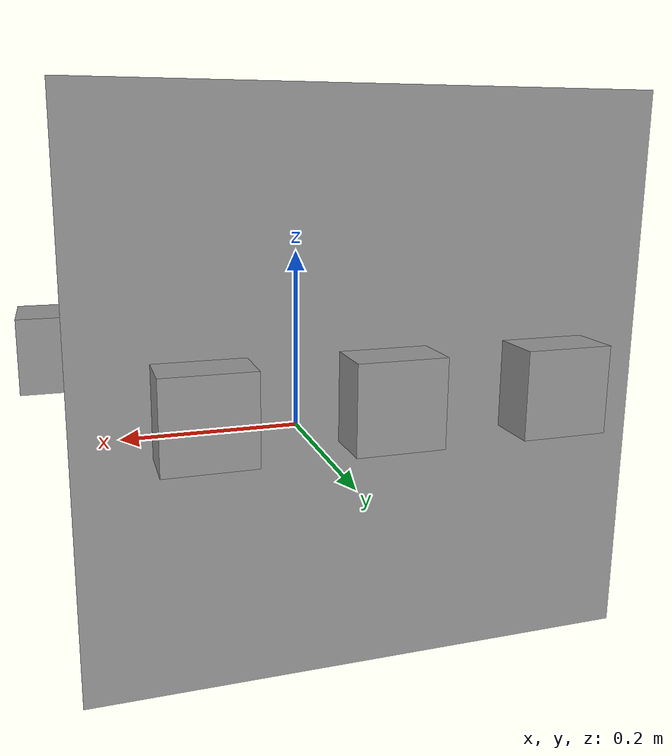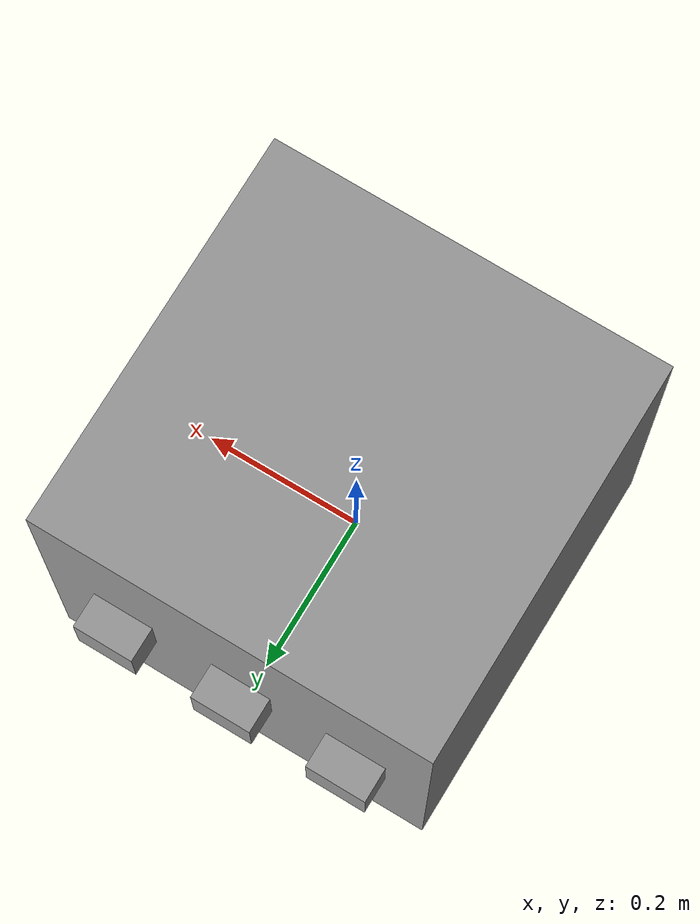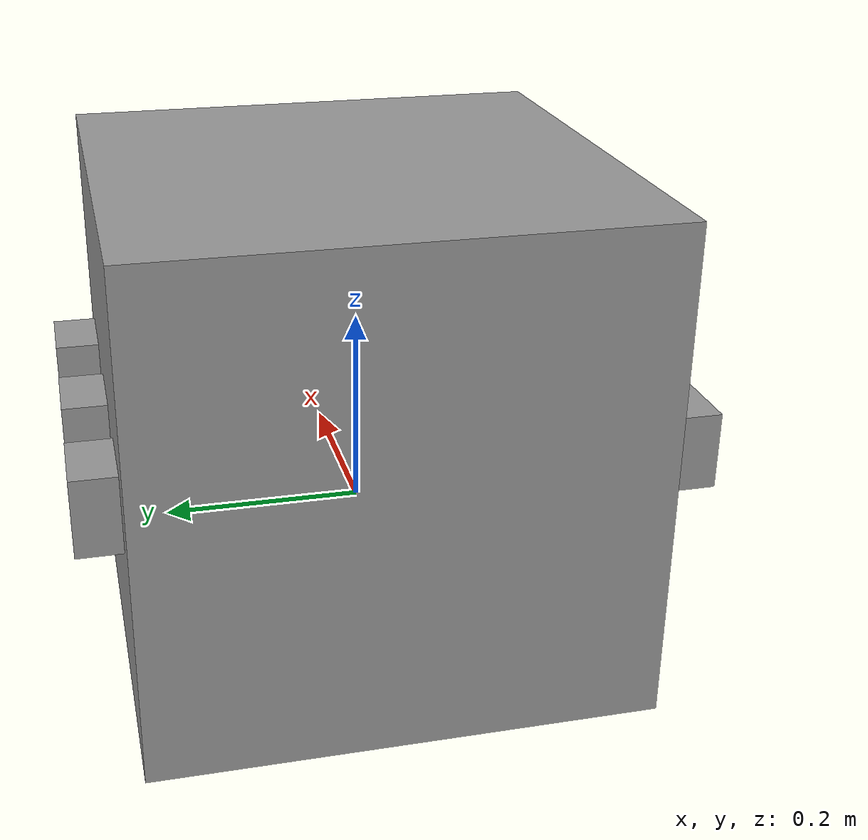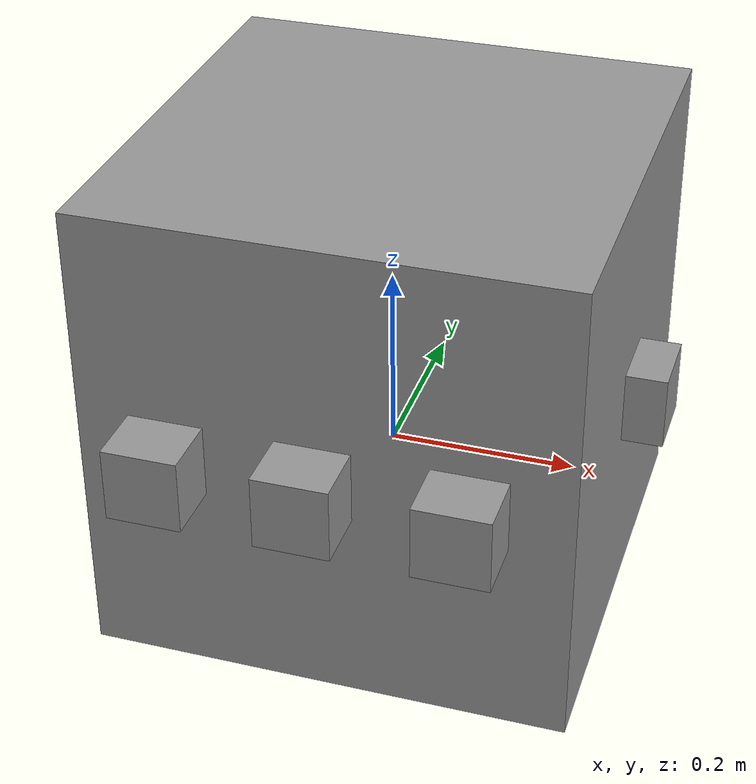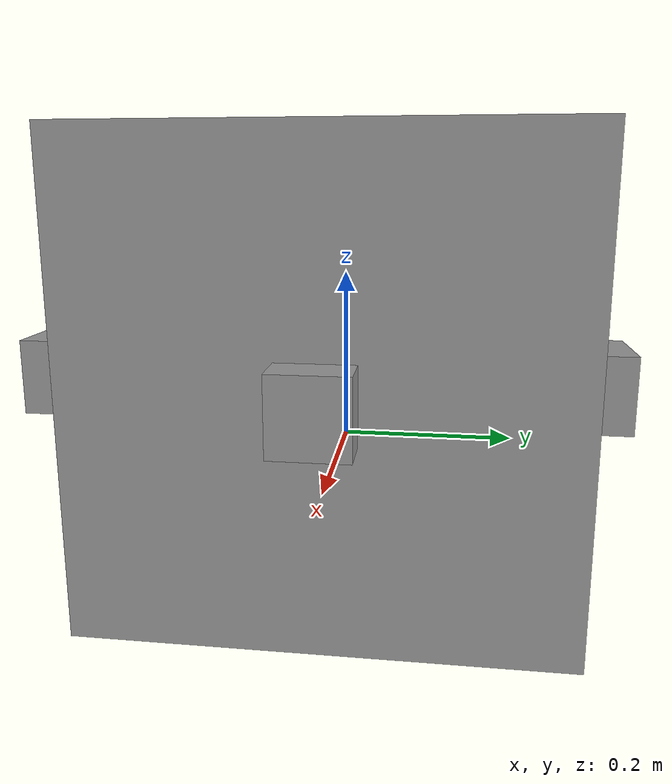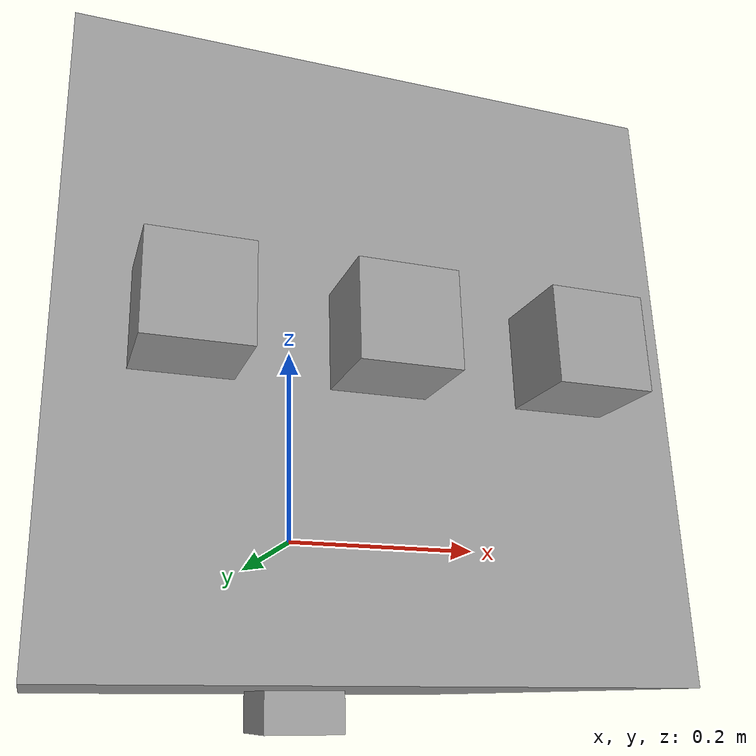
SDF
<?xml version='1.0'?>
<sdf version='1.6'>
  <model name='tiburon_bot_final'>
    <link name='main_cube_body'>
      <pose frame=''>0.004745 0.002289 0.10857 0 -0 0</pose>
      <inertial>
        <mass>23</mass>
        <inertia>
          <ixx>0.166667</ixx>
          <ixy>0</ixy>
          <ixz>0</ixz>
          <iyy>0.166667</iyy>
          <iyz>0</iyz>
          <izz>0.166667</izz>
        </inertia>
        <pose frame=''>0 0 0 0 -0 0</pose>
      </inertial>
      <self_collide>0</self_collide>
      <kinematic>0</kinematic>
      <visual name='visual'>
        <pose frame=''>0 0 0 0 -0 0</pose>
        <geometry>
          <box>
            <size>0.5 0.5 0.5</size>
          </box>
        </geometry>
        <material>
          <lighting>1</lighting>
          <script>
            <uri>file://media/materials/scripts/gazebo.material</uri>
            <name>Gazebo/Grey</name>
          </script>
          <shader type='pixel'>
            <normal_map>__default__</normal_map>
          </shader>
          <ambient>0.3 0.3 0.3 1</ambient>
          <diffuse>0.7 0.7 0.7 1</diffuse>
          <specular>0.01 0.01 0.01 1</specular>
          <emissive>0 0 0 1</emissive>
        </material>
        <transparency>0</transparency>
        <cast_shadows>1</cast_shadows>
      </visual>
      <collision name='collision'>
        <laser_retro>0</laser_retro>
        <max_contacts>10</max_contacts>
        <pose frame=''>0 0 0 0 -0 0</pose>
        <geometry>
          <box>
            <size>0.5 0.5 0.5</size>
          </box>
        </geometry>
        <surface>
          <friction>
            <ode>
              <mu>1</mu>
              <mu2>1</mu2>
              <fdir1>0 0 0</fdir1>
              <slip1>0</slip1>
              <slip2>0</slip2>
            </ode>
            <torsional>
              <coefficient>1</coefficient>
              <patch_radius>0</patch_radius>
              <surface_radius>0</surface_radius>
              <use_patch_radius>1</use_patch_radius>
              <ode>
                <slip>0</slip>
              </ode>
            </torsional>
          </friction>
          <bounce>
            <restitution_coefficient>0</restitution_coefficient>
            <threshold>1e+06</threshold>
          </bounce>
          <contact>
            <collide_without_contact>0</collide_without_contact>
            <collide_without_contact_bitmask>1</collide_without_contact_bitmask>
            <collide_bitmask>1</collide_bitmask>
            <ode>
              <soft_cfm>0</soft_cfm>
              <soft_erp>0.2</soft_erp>
              <kp>1e+13</kp>
              <kd>1</kd>
              <max_vel>0.01</max_vel>
              <min_depth>0</min_depth>
            </ode>
            <bullet>
              <split_impulse>1</split_impulse>
              <split_impulse_penetration_threshold>-0.01</split_impulse_penetration_threshold>
              <soft_cfm>0</soft_cfm>
              <soft_erp>0.2</soft_erp>
              <kp>1e+13</kp>
              <kd>1</kd>
            </bullet>
          </contact>
        </surface>
      </collision>
    </link>
    <link name='thruster_1'>
      <pose frame=''>-0.151996 0.257619 0.10857 0 -0 0</pose>
      <inertial>
        <mass>0.39</mass>
        <inertia>
          <ixx>0.166667</ixx>
          <ixy>0</ixy>
          <ixz>0</ixz>
          <iyy>0.166667</iyy>
          <iyz>0</iyz>
          <izz>0.166667</izz>
        </inertia>
        <pose frame=''>0 0 0 0 -0 0</pose>
      </inertial>
      <self_collide>0</self_collide>
      <kinematic>0</kinematic>
      <visual name='visual'>
        <pose frame=''>0 0 0 0 -0 0</pose>
        <geometry>
          <box>
            <size>0.077 0.077 0.077</size>
          </box>
        </geometry>
        <material>
          <lighting>1</lighting>
          <script>
            <uri>file://media/materials/scripts/gazebo.material</uri>
            <name>Gazebo/Grey</name>
          </script>
          <shader type='pixel'>
            <normal_map>__default__</normal_map>
          </shader>
          <ambient>1 1 1 1</ambient>
          <diffuse>1 1 1 1</diffuse>
          <specular>1 1 1 1</specular>
          <emissive>1 1 1 1</emissive>
        </material>
        <transparency>0</transparency>
        <cast_shadows>1</cast_shadows>
      </visual>
      <collision name='collision'>
        <laser_retro>0</laser_retro>
        <max_contacts>10</max_contacts>
        <pose frame=''>0 0 0 0 -0 0</pose>
        <geometry>
          <box>
            <size>0.077 0.077 0.077</size>
          </box>
        </geometry>
        <surface>
          <friction>
            <ode>
              <mu>1</mu>
              <mu2>1</mu2>
              <fdir1>0 0 0</fdir1>
              <slip1>0</slip1>
              <slip2>0</slip2>
            </ode>
            <torsional>
              <coefficient>1</coefficient>
              <patch_radius>0</patch_radius>
              <surface_radius>0</surface_radius>
              <use_patch_radius>1</use_patch_radius>
              <ode>
                <slip>0</slip>
              </ode>
            </torsional>
          </friction>
          <bounce>
            <restitution_coefficient>0</restitution_coefficient>
            <threshold>1e+06</threshold>
          </bounce>
          <contact>
            <collide_without_contact>0</collide_without_contact>
            <collide_without_contact_bitmask>1</collide_without_contact_bitmask>
            <collide_bitmask>1</collide_bitmask>
            <ode>
              <soft_cfm>0</soft_cfm>
              <soft_erp>0.2</soft_erp>
              <kp>1e+13</kp>
              <kd>1</kd>
              <max_vel>0.01</max_vel>
              <min_depth>0</min_depth>
            </ode>
            <bullet>
              <split_impulse>1</split_impulse>
              <split_impulse_penetration_threshold>-0.01</split_impulse_penetration_threshold>
              <soft_cfm>0</soft_cfm>
              <soft_erp>0.2</soft_erp>
              <kp>1e+13</kp>
              <kd>1</kd>
            </bullet>
          </contact>
        </surface>
      </collision>
    </link>
    <link name='thruster_2'>
      <pose frame=''>-0.151996 -0.27381 0.10857 0 -0 0</pose>
      <inertial>
        <mass>0.39</mass>
        <inertia>
          <ixx>0.166667</ixx>
          <ixy>0</ixy>
          <ixz>0</ixz>
          <iyy>0.166667</iyy>
          <iyz>0</iyz>
          <izz>0.166667</izz>
        </inertia>
        <pose frame=''>0 0 0 0 -0 0</pose>
      </inertial>
      <self_collide>0</self_collide>
      <kinematic>0</kinematic>
      <visual name='visual'>
        <pose frame=''>0 0 0 0 -0 0</pose>
        <geometry>
          <box>
            <size>0.077 0.077 0.077</size>
          </box>
        </geometry>
        <material>
          <lighting>1</lighting>
          <script>
            <uri>file://media/materials/scripts/gazebo.material</uri>
            <name>Gazebo/Grey</name>
          </script>
          <shader type='pixel'>
            <normal_map>__default__</normal_map>
          </shader>
          <ambient>1 1 1 1</ambient>
          <diffuse>1 1 1 1</diffuse>
          <specular>1 1 1 1</specular>
          <emissive>1 1 1 1</emissive>
        </material>
        <transparency>0</transparency>
        <cast_shadows>1</cast_shadows>
      </visual>
      <collision name='collision'>
        <laser_retro>0</laser_retro>
        <max_contacts>10</max_contacts>
        <pose frame=''>0 0 0 0 -0 0</pose>
        <geometry>
          <box>
            <size>0.077 0.077 0.077</size>
          </box>
        </geometry>
        <surface>
          <friction>
            <ode>
              <mu>1</mu>
              <mu2>1</mu2>
              <fdir1>0 0 0</fdir1>
              <slip1>0</slip1>
              <slip2>0</slip2>
            </ode>
            <torsional>
              <coefficient>1</coefficient>
              <patch_radius>0</patch_radius>
              <surface_radius>0</surface_radius>
              <use_patch_radius>1</use_patch_radius>
              <ode>
                <slip>0</slip>
              </ode>
            </torsional>
          </friction>
          <bounce>
            <restitution_coefficient>0</restitution_coefficient>
            <threshold>1e+06</threshold>
          </bounce>
          <contact>
            <collide_without_contact>0</collide_without_contact>
            <collide_without_contact_bitmask>1</collide_without_contact_bitmask>
            <collide_bitmask>1</collide_bitmask>
            <ode>
              <soft_cfm>0</soft_cfm>
              <soft_erp>0.2</soft_erp>
              <kp>1e+13</kp>
              <kd>1</kd>
              <max_vel>0.01</max_vel>
              <min_depth>0</min_depth>
            </ode>
            <bullet>
              <split_impulse>1</split_impulse>
              <split_impulse_penetration_threshold>-0.01</split_impulse_penetration_threshold>
              <soft_cfm>0</soft_cfm>
              <soft_erp>0.2</soft_erp>
              <kp>1e+13</kp>
              <kd>1</kd>
            </bullet>
          </contact>
        </surface>
      </collision>
    </link>
    <link name='thruster_3'>
      <pose frame=''>0.259 0.002289 0.10857 0 -0 0</pose>
      <inertial>
        <mass>0.39</mass>
        <inertia>
          <ixx>0.166667</ixx>
          <ixy>0</ixy>
          <ixz>0</ixz>
          <iyy>0.166667</iyy>
          <iyz>0</iyz>
          <izz>0.166667</izz>
        </inertia>
        <pose frame=''>0 0 0 0 -0 0</pose>
      </inertial>
      <self_collide>0</self_collide>
      <kinematic>0</kinematic>
      <visual name='visual'>
        <pose frame=''>0 0 0 0 -0 0</pose>
        <geometry>
          <box>
            <size>0.077 0.077 0.077</size>
          </box>
        </geometry>
        <material>
          <lighting>1</lighting>
          <script>
            <uri>file://media/materials/scripts/gazebo.material</uri>
            <name>Gazebo/Grey</name>
          </script>
          <shader type='pixel'>
            <normal_map>__default__</normal_map>
          </shader>
          <ambient>1 1 1 1</ambient>
          <diffuse>1 1 1 1</diffuse>
          <specular>1 1 1 1</specular>
          <emissive>1 1 1 1</emissive>
        </material>
        <transparency>0</transparency>
        <cast_shadows>1</cast_shadows>
      </visual>
      <collision name='collision'>
        <laser_retro>0</laser_retro>
        <max_contacts>10</max_contacts>
        <pose frame=''>0 0 0 0 -0 0</pose>
        <geometry>
          <box>
            <size>0.077 0.077 0.077</size>
          </box>
        </geometry>
        <surface>
          <friction>
            <ode>
              <mu>1</mu>
              <mu2>1</mu2>
              <fdir1>0 0 0</fdir1>
              <slip1>0</slip1>
              <slip2>0</slip2>
            </ode>
            <torsional>
              <coefficient>1</coefficient>
              <patch_radius>0</patch_radius>
              <surface_radius>0</surface_radius>
              <use_patch_radius>1</use_patch_radius>
              <ode>
                <slip>0</slip>
              </ode>
            </torsional>
          </friction>
          <bounce>
            <restitution_coefficient>0</restitution_coefficient>
            <threshold>1e+06</threshold>
          </bounce>
          <contact>
            <collide_without_contact>0</collide_without_contact>
            <collide_without_contact_bitmask>1</collide_without_contact_bitmask>
            <collide_bitmask>1</collide_bitmask>
            <ode>
              <soft_cfm>0</soft_cfm>
              <soft_erp>0.2</soft_erp>
              <kp>1e+13</kp>
              <kd>1</kd>
              <max_vel>0.01</max_vel>
              <min_depth>0</min_depth>
            </ode>
            <bullet>
              <split_impulse>1</split_impulse>
              <split_impulse_penetration_threshold>-0.01</split_impulse_penetration_threshold>
              <soft_cfm>0</soft_cfm>
              <soft_erp>0.2</soft_erp>
              <kp>1e+13</kp>
              <kd>1</kd>
            </bullet>
          </contact>
        </surface>
      </collision>
    </link>
    <link name='thruster_4'>
      <pose frame=''>0.152004 0.257619 0.10857 0 -0 0</pose>
      <inertial>
        <mass>0.39</mass>
        <inertia>
          <ixx>0.166667</ixx>
          <ixy>0</ixy>
          <ixz>0</ixz>
          <iyy>0.166667</iyy>
          <iyz>0</iyz>
          <izz>0.166667</izz>
        </inertia>
        <pose frame=''>0 0 0 0 -0 0</pose>
      </inertial>
      <self_collide>0</self_collide>
      <kinematic>0</kinematic>
      <visual name='visual'>
        <pose frame=''>0 0 0 0 -0 0</pose>
        <geometry>
          <box>
            <size>0.077 0.077 0.077</size>
          </box>
        </geometry>
        <material>
          <lighting>1</lighting>
          <script>
            <uri>file://media/materials/scripts/gazebo.material</uri>
            <name>Gazebo/Grey</name>
          </script>
          <shader type='pixel'>
            <normal_map>__default__</normal_map>
          </shader>
          <ambient>1 1 1 1</ambient>
          <diffuse>1 1 1 1</diffuse>
          <specular>1 1 1 1</specular>
          <emissive>1 1 1 1</emissive>
        </material>
        <transparency>0</transparency>
        <cast_shadows>1</cast_shadows>
      </visual>
      <collision name='collision'>
        <laser_retro>0</laser_retro>
        <max_contacts>10</max_contacts>
        <pose frame=''>0 0 0 0 -0 0</pose>
        <geometry>
          <box>
            <size>0.077 0.077 0.077</size>
          </box>
        </geometry>
        <surface>
          <friction>
            <ode>
              <mu>1</mu>
              <mu2>1</mu2>
              <fdir1>0 0 0</fdir1>
              <slip1>0</slip1>
              <slip2>0</slip2>
            </ode>
            <torsional>
              <coefficient>1</coefficient>
              <patch_radius>0</patch_radius>
              <surface_radius>0</surface_radius>
              <use_patch_radius>1</use_patch_radius>
              <ode>
                <slip>0</slip>
              </ode>
            </torsional>
          </friction>
          <bounce>
            <restitution_coefficient>0</restitution_coefficient>
            <threshold>1e+06</threshold>
          </bounce>
          <contact>
            <collide_without_contact>0</collide_without_contact>
            <collide_without_contact_bitmask>1</collide_without_contact_bitmask>
            <collide_bitmask>1</collide_bitmask>
            <ode>
              <soft_cfm>0</soft_cfm>
              <soft_erp>0.2</soft_erp>
              <kp>1e+13</kp>
              <kd>1</kd>
              <max_vel>0.01</max_vel>
              <min_depth>0</min_depth>
            </ode>
            <bullet>
              <split_impulse>1</split_impulse>
              <split_impulse_penetration_threshold>-0.01</split_impulse_penetration_threshold>
              <soft_cfm>0</soft_cfm>
              <soft_erp>0.2</soft_erp>
              <kp>1e+13</kp>
              <kd>1</kd>
            </bullet>
          </contact>
        </surface>
      </collision>
    </link>
    <link name='thruster_5'>
      <pose frame=''>0.152004 -0.27381 0.10857 0 -0 0</pose>
      <inertial>
        <mass>0.39</mass>
        <inertia>
          <ixx>0.166667</ixx>
          <ixy>0</ixy>
          <ixz>0</ixz>
          <iyy>0.166667</iyy>
          <iyz>0</iyz>
          <izz>0.166667</izz>
        </inertia>
        <pose frame=''>0 0 0 0 -0 0</pose>
      </inertial>
      <self_collide>0</self_collide>
      <kinematic>0</kinematic>
      <visual name='visual'>
        <pose frame=''>0 0 0 0 -0 0</pose>
        <geometry>
          <box>
            <size>0.077 0.077 0.077</size>
          </box>
        </geometry>
        <material>
          <lighting>1</lighting>
          <script>
            <uri>file://media/materials/scripts/gazebo.material</uri>
            <name>Gazebo/Grey</name>
          </script>
          <shader type='pixel'>
            <normal_map>__default__</normal_map>
          </shader>
          <ambient>1 1 1 1</ambient>
          <diffuse>1 1 1 1</diffuse>
          <specular>1 1 1 1</specular>
          <emissive>1 1 1 1</emissive>
        </material>
        <transparency>0</transparency>
        <cast_shadows>1</cast_shadows>
      </visual>
      <collision name='collision'>
        <laser_retro>0</laser_retro>
        <max_contacts>10</max_contacts>
        <pose frame=''>0 0 0 0 -0 0</pose>
        <geometry>
          <box>
            <size>0.077 0.077 0.077</size>
          </box>
        </geometry>
        <surface>
          <friction>
            <ode>
              <mu>1</mu>
              <mu2>1</mu2>
              <fdir1>0 0 0</fdir1>
              <slip1>0</slip1>
              <slip2>0</slip2>
            </ode>
            <torsional>
              <coefficient>1</coefficient>
              <patch_radius>0</patch_radius>
              <surface_radius>0</surface_radius>
              <use_patch_radius>1</use_patch_radius>
              <ode>
                <slip>0</slip>
              </ode>
            </torsional>
          </friction>
          <bounce>
            <restitution_coefficient>0</restitution_coefficient>
            <threshold>1e+06</threshold>
          </bounce>
          <contact>
            <collide_without_contact>0</collide_without_contact>
            <collide_without_contact_bitmask>1</collide_without_contact_bitmask>
            <collide_bitmask>1</collide_bitmask>
            <ode>
              <soft_cfm>0</soft_cfm>
              <soft_erp>0.2</soft_erp>
              <kp>1e+13</kp>
              <kd>1</kd>
              <max_vel>0.01</max_vel>
              <min_depth>0</min_depth>
            </ode>
            <bullet>
              <split_impulse>1</split_impulse>
              <split_impulse_penetration_threshold>-0.01</split_impulse_penetration_threshold>
              <soft_cfm>0</soft_cfm>
              <soft_erp>0.2</soft_erp>
              <kp>1e+13</kp>
              <kd>1</kd>
            </bullet>
          </contact>
        </surface>
      </collision>
    </link>
    <link name='thruster_6'>
      <pose frame=''>0.004745 0.002289 -0.1413 0 -0 0</pose>
      <inertial>
        <mass>0.39</mass>
        <inertia>
          <ixx>0.166667</ixx>
          <ixy>0</ixy>
          <ixz>0</ixz>
          <iyy>0.166667</iyy>
          <iyz>0</iyz>
          <izz>0.166667</izz>
        </inertia>
        <pose frame=''>0 0 0 0 -0 0</pose>
      </inertial>
      <self_collide>0</self_collide>
      <kinematic>0</kinematic>
      <gravity>1</gravity>
      <visual name='visual'>
        <pose frame=''>0 0 0 0 -0 0</pose>
        <geometry>
          <box>
            <size>0.077 0.077 0.077</size>
          </box>
        </geometry>
        <material>
          <lighting>1</lighting>
          <script>
            <uri>file://media/materials/scripts/gazebo.material</uri>
            <name>Gazebo/Grey</name>
          </script>
          <shader type='pixel'>
            <normal_map>__default__</normal_map>
          </shader>
          <ambient>1 1 1 1</ambient>
          <diffuse>1 1 1 1</diffuse>
          <specular>1 1 1 1</specular>
          <emissive>1 1 1 1</emissive>
        </material>
        <transparency>0</transparency>
        <cast_shadows>1</cast_shadows>
      </visual>
      <collision name='collision'>
        <laser_retro>0</laser_retro>
        <max_contacts>10</max_contacts>
        <pose frame=''>0 0 0 0 -0 0</pose>
        <geometry>
          <box>
            <size>0.077 0.077 0.077</size>
          </box>
        </geometry>
        <surface>
          <friction>
            <ode>
              <mu>1</mu>
              <mu2>1</mu2>
              <fdir1>0 0 0</fdir1>
              <slip1>0</slip1>
              <slip2>0</slip2>
            </ode>
            <torsional>
              <coefficient>1</coefficient>
              <patch_radius>0</patch_radius>
              <surface_radius>0</surface_radius>
              <use_patch_radius>1</use_patch_radius>
              <ode>
                <slip>0</slip>
              </ode>
            </torsional>
          </friction>
          <bounce>
            <restitution_coefficient>0</restitution_coefficient>
            <threshold>1e+06</threshold>
          </bounce>
          <contact>
            <collide_without_contact>0</collide_without_contact>
            <collide_without_contact_bitmask>1</collide_without_contact_bitmask>
            <collide_bitmask>1</collide_bitmask>
            <ode>
              <soft_cfm>0</soft_cfm>
              <soft_erp>0.2</soft_erp>
              <kp>1e+13</kp>
              <kd>1</kd>
              <max_vel>0.01</max_vel>
              <min_depth>0</min_depth>
            </ode>
            <bullet>
              <split_impulse>1</split_impulse>
              <split_impulse_penetration_threshold>-0.01</split_impulse_penetration_threshold>
              <soft_cfm>0</soft_cfm>
              <soft_erp>0.2</soft_erp>
              <kp>1e+13</kp>
              <kd>1</kd>
            </bullet>
          </contact>
        </surface>
      </collision>
    </link>
    <link name='thruster_7'>
      <pose frame=''>-0.002381 0.257619 0.10857 0 -0 0</pose>
      <inertial>
        <mass>0.39</mass>
        <inertia>
          <ixx>0.166667</ixx>
          <ixy>0</ixy>
          <ixz>0</ixz>
          <iyy>0.166667</iyy>
          <iyz>0</iyz>
          <izz>0.166667</izz>
        </inertia>
        <pose frame=''>0 0 0 0 -0 0</pose>
      </inertial>
      <self_collide>0</self_collide>
      <kinematic>0</kinematic>
      <visual name='visual'>
        <pose frame=''>0 0 0 0 -0 0</pose>
        <geometry>
          <box>
            <size>0.077 0.077 0.077</size>
          </box>
        </geometry>
        <material>
          <lighting>1</lighting>
          <script>
            <uri>file://media/materials/scripts/gazebo.material</uri>
            <name>Gazebo/Grey</name>
          </script>
          <shader type='pixel'>
            <normal_map>__default__</normal_map>
          </shader>
          <ambient>1 1 1 1</ambient>
          <diffuse>1 1 1 1</diffuse>
          <specular>1 1 1 1</specular>
          <emissive>1 1 1 1</emissive>
        </material>
        <transparency>0</transparency>
        <cast_shadows>1</cast_shadows>
      </visual>
      <collision name='collision'>
        <laser_retro>0</laser_retro>
        <max_contacts>10</max_contacts>
        <pose frame=''>0 0 0 0 -0 0</pose>
        <geometry>
          <box>
            <size>0.077 0.077 0.077</size>
          </box>
        </geometry>
        <surface>
          <friction>
            <ode>
              <mu>1</mu>
              <mu2>1</mu2>
              <fdir1>0 0 0</fdir1>
              <slip1>0</slip1>
              <slip2>0</slip2>
            </ode>
            <torsional>
              <coefficient>1</coefficient>
              <patch_radius>0</patch_radius>
              <surface_radius>0</surface_radius>
              <use_patch_radius>1</use_patch_radius>
              <ode>
                <slip>0</slip>
              </ode>
            </torsional>
          </friction>
          <bounce>
            <restitution_coefficient>0</restitution_coefficient>
            <threshold>1e+06</threshold>
          </bounce>
          <contact>
            <collide_without_contact>0</collide_without_contact>
            <collide_without_contact_bitmask>1</collide_without_contact_bitmask>
            <collide_bitmask>1</collide_bitmask>
            <ode>
              <soft_cfm>0</soft_cfm>
              <soft_erp>0.2</soft_erp>
              <kp>1e+13</kp>
              <kd>1</kd>
              <max_vel>0.01</max_vel>
              <min_depth>0</min_depth>
            </ode>
            <bullet>
              <split_impulse>1</split_impulse>
              <split_impulse_penetration_threshold>-0.01</split_impulse_penetration_threshold>
              <soft_cfm>0</soft_cfm>
              <soft_erp>0.2</soft_erp>
              <kp>1e+13</kp>
              <kd>1</kd>
            </bullet>
          </contact>
        </surface>
      </collision>
    </link>
    <link name='thruster_8'>
      <pose frame=''>-0.002381 -0.27381 0.10857 0 -0 0</pose>
      <inertial>
        <mass>0.39</mass>
        <inertia>
          <ixx>0.166667</ixx>
          <ixy>0</ixy>
          <ixz>0</ixz>
          <iyy>0.166667</iyy>
          <iyz>0</iyz>
          <izz>0.166667</izz>
        </inertia>
        <pose frame=''>0 0 0 0 -0 0</pose>
      </inertial>
      <self_collide>0</self_collide>
      <kinematic>0</kinematic>
      <visual name='visual'>
        <pose frame=''>0 0 0 0 -0 0</pose>
        <geometry>
          <box>
            <size>0.077 0.077 0.077</size>
          </box>
        </geometry>
        <material>
          <lighting>1</lighting>
          <script>
            <uri>file://media/materials/scripts/gazebo.material</uri>
            <name>Gazebo/Grey</name>
          </script>
          <shader type='pixel'>
            <normal_map>__default__</normal_map>
          </shader>
          <ambient>1 1 1 1</ambient>
          <diffuse>1 1 1 1</diffuse>
          <specular>1 1 1 1</specular>
          <emissive>1 1 1 1</emissive>
        </material>
        <transparency>0</transparency>
        <cast_shadows>1</cast_shadows>
      </visual>
      <collision name='collision'>
        <laser_retro>0</laser_retro>
        <max_contacts>10</max_contacts>
        <pose frame=''>0 0 0 0 -0 0</pose>
        <geometry>
          <box>
            <size>0.077 0.077 0.077</size>
          </box>
        </geometry>
        <surface>
          <friction>
            <ode>
              <mu>1</mu>
              <mu2>1</mu2>
              <fdir1>0 0 0</fdir1>
              <slip1>0</slip1>
              <slip2>0</slip2>
            </ode>
            <torsional>
              <coefficient>1</coefficient>
              <patch_radius>0</patch_radius>
              <surface_radius>0</surface_radius>
              <use_patch_radius>1</use_patch_radius>
              <ode>
                <slip>0</slip>
              </ode>
            </torsional>
          </friction>
          <bounce>
            <restitution_coefficient>0</restitution_coefficient>
            <threshold>1e+06</threshold>
          </bounce>
          <contact>
            <collide_without_contact>0</collide_without_contact>
            <collide_without_contact_bitmask>1</collide_without_contact_bitmask>
            <collide_bitmask>1</collide_bitmask>
            <ode>
              <soft_cfm>0</soft_cfm>
              <soft_erp>0.2</soft_erp>
              <kp>1e+13</kp>
              <kd>1</kd>
              <max_vel>0.01</max_vel>
              <min_depth>0</min_depth>
            </ode>
            <bullet>
              <split_impulse>1</split_impulse>
              <split_impulse_penetration_threshold>-0.01</split_impulse_penetration_threshold>
              <soft_cfm>0</soft_cfm>
              <soft_erp>0.2</soft_erp>
              <kp>1e+13</kp>
              <kd>1</kd>
            </bullet>
          </contact>
        </surface>
      </collision>
    </link>
    <static>0</static>
    <allow_auto_disable>1</allow_auto_disable>
  </model>
</sdf>
